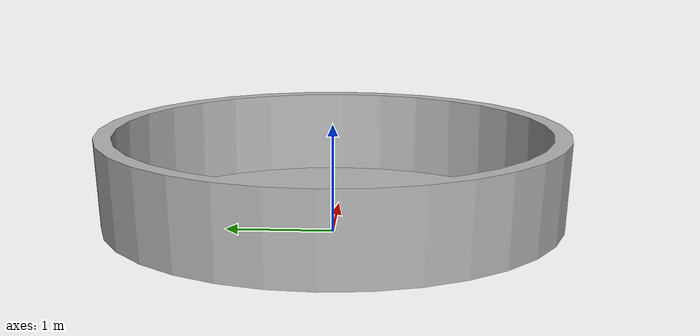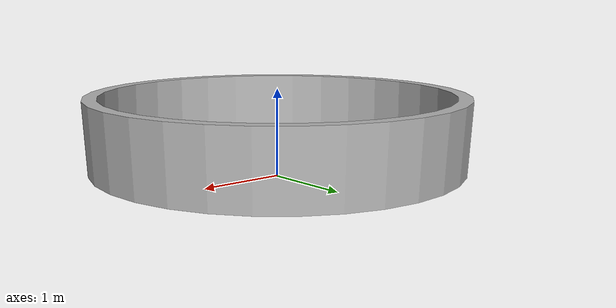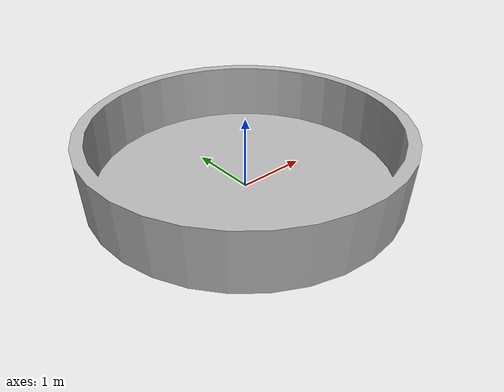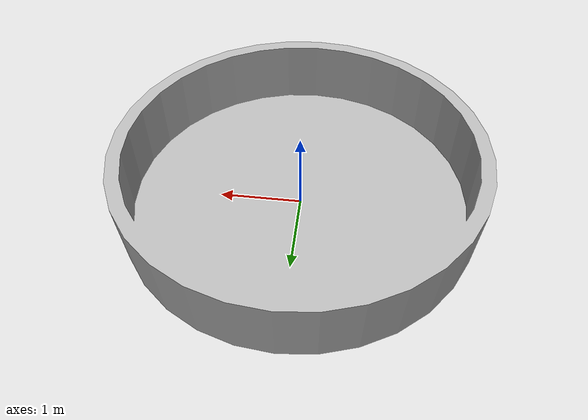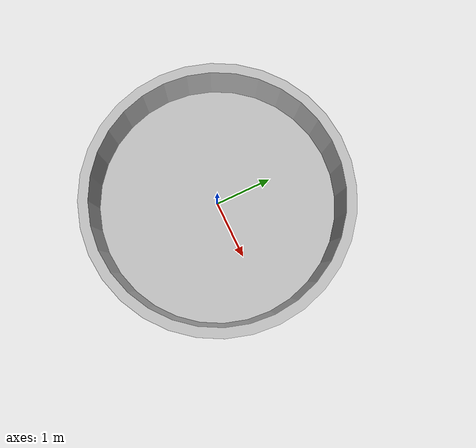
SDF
<?xml version="1.0" ?>
<sdf version="1.5">
  <model name="ring_wall_type1">
    <static>true</static>
    <link name="link">
      <collision name="surface">
        <pose>0 0 0.54 0 0 0</pose>
        <geometry>
          <mesh>
          <uri>model://ring_wall/meshes/ring_wall.obj</uri>
           <scale>0.02 0.02 0.02</scale>
          </mesh>
        </geometry>
      </collision>

      <visual name="visual">
        <pose>0 0 0.54 0 0 0</pose>
        <geometry>
          <mesh>
            <uri>model://ring_wall/meshes/ring_wall.obj</uri>
             <scale>0.02 0.02 0.02</scale>
          </mesh>
        </geometry>
      </visual>
    </link>
  </model>
</sdf>
